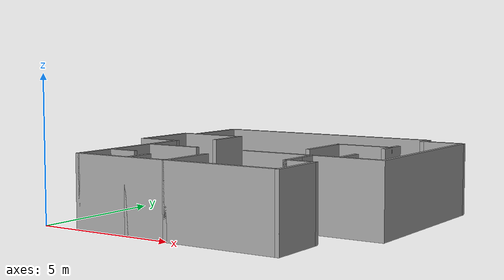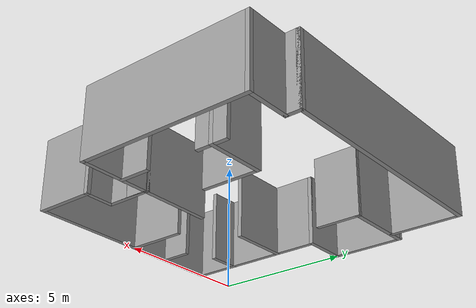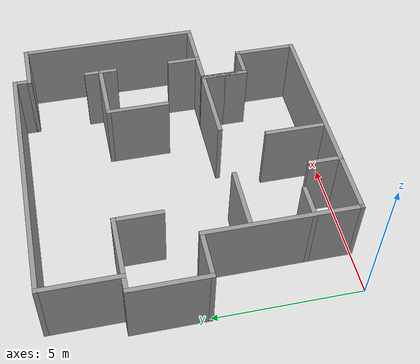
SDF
<?xml version='1.0'?>
<sdf version='1.7'>
  <model name='room1'>
    <pose>5.25 5 0 0 -0 0</pose>
    <link name='Wall_0'>
      <collision name='Wall_0_Collision'>
        <geometry>
          <box>
            <size>2.65 0.15 2.5</size>
          </box>
        </geometry>
        <pose>0 0 1.25 0 -0 0</pose>
      </collision>
      <visual name='Wall_0_Visual'>
        <pose>0 0 1.25 0 -0 0</pose>
        <geometry>
          <box>
            <size>2.65 0.15 2.5</size>
          </box>
        </geometry>
        <material>
          <script>
            <uri>file://media/materials/scripts/gazebo.material</uri>
            <name>Gazebo/Grey</name>
          </script>
          <ambient>1 1 1 1</ambient>
        </material>
        <meta>
          <layer>0</layer>
        </meta>
      </visual>
      <pose>-5.25 1.25 0 0 -0 1.5708</pose>
    </link>
    <link name='Wall_10'>
      <collision name='Wall_10_Collision'>
        <geometry>
          <box>
            <size>1.65 0.15 2.5</size>
          </box>
        </geometry>
        <pose>0 0 1.25 0 -0 0</pose>
      </collision>
      <visual name='Wall_10_Visual'>
        <pose>0 0 1.25 0 -0 0</pose>
        <geometry>
          <box>
            <size>1.65 0.15 2.5</size>
          </box>
        </geometry>
        <material>
          <script>
            <uri>file://media/materials/scripts/gazebo.material</uri>
            <name>Gazebo/Grey</name>
          </script>
          <ambient>1 1 1 1</ambient>
        </material>
        <meta>
          <layer>0</layer>
        </meta>
      </visual>
      <pose>2.75 -2.25 0 0 -0 1.5708</pose>
    </link>
    <link name='Wall_11'>
      <collision name='Wall_11_Collision'>
        <geometry>
          <box>
            <size>1.65 0.15 2.5</size>
          </box>
        </geometry>
        <pose>0 0 1.25 0 -0 0</pose>
      </collision>
      <visual name='Wall_11_Visual'>
        <pose>0 0 1.25 0 -0 0</pose>
        <geometry>
          <box>
            <size>1.65 0.15 2.5</size>
          </box>
        </geometry>
        <material>
          <script>
            <uri>file://media/materials/scripts/gazebo.material</uri>
            <name>Gazebo/Grey</name>
          </script>
          <ambient>1 1 1 1</ambient>
        </material>
        <meta>
          <layer>0</layer>
        </meta>
      </visual>
      <pose>2.75 -2.25 0 0 -0 -1.5708</pose>
    </link>
    <link name='Wall_13'>
      <collision name='Wall_13_Collision'>
        <geometry>
          <box>
            <size>1.15 0.15 2.5</size>
          </box>
        </geometry>
        <pose>0 0 1.25 0 -0 0</pose>
      </collision>
      <visual name='Wall_13_Visual'>
        <pose>0 0 1.25 0 -0 0</pose>
        <geometry>
          <box>
            <size>1.15 0.15 2.5</size>
          </box>
        </geometry>
        <material>
          <script>
            <uri>file://media/materials/scripts/gazebo.material</uri>
            <name>Gazebo/Grey</name>
          </script>
          <ambient>1 1 1 1</ambient>
        </material>
        <meta>
          <layer>0</layer>
        </meta>
      </visual>
      <pose>3.25 -3 0 0 -0 3.14159</pose>
    </link>
    <link name='Wall_15'>
      <collision name='Wall_15_Collision'>
        <geometry>
          <box>
            <size>5.15 0.15 2.5</size>
          </box>
        </geometry>
        <pose>0 0 1.25 0 -0 0</pose>
      </collision>
      <visual name='Wall_15_Visual'>
        <pose>0 0 1.25 0 -0 0</pose>
        <geometry>
          <box>
            <size>5.15 0.15 2.5</size>
          </box>
        </geometry>
        <material>
          <script>
            <uri>file://media/materials/scripts/gazebo.material</uri>
            <name>Gazebo/Grey</name>
          </script>
          <ambient>1 1 1 1</ambient>
        </material>
        <meta>
          <layer>0</layer>
        </meta>
      </visual>
      <pose>2.75 -1.5 0 0 -0 3.14159</pose>
    </link>
    <link name='Wall_17'>
      <collision name='Wall_17_Collision'>
        <geometry>
          <box>
            <size>6.15 0.15 2.5</size>
          </box>
        </geometry>
        <pose>0 0 1.25 0 -0 0</pose>
      </collision>
      <visual name='Wall_17_Visual'>
        <pose>0 0 1.25 0 -0 0</pose>
        <geometry>
          <box>
            <size>6.15 0.15 2.5</size>
          </box>
        </geometry>
        <material>
          <script>
            <uri>file://media/materials/scripts/gazebo.material</uri>
            <name>Gazebo/Grey</name>
          </script>
          <ambient>1 1 1 1</ambient>
        </material>
        <meta>
          <layer>0</layer>
        </meta>
      </visual>
      <pose>5.25 1.5 0 0 -0 1.5708</pose>
    </link>
    <link name='Wall_19'>
      <collision name='Wall_19_Collision'>
        <geometry>
          <box>
            <size>1.65 0.15 2.5</size>
          </box>
        </geometry>
        <pose>0 0 1.25 0 -0 0</pose>
      </collision>
      <visual name='Wall_19_Visual'>
        <pose>0 0 1.25 0 -0 0</pose>
        <geometry>
          <box>
            <size>1.65 0.15 2.5</size>
          </box>
        </geometry>
        <material>
          <script>
            <uri>file://media/materials/scripts/gazebo.material</uri>
            <name>Gazebo/Grey</name>
          </script>
          <ambient>1 1 1 1</ambient>
        </material>
        <meta>
          <layer>0</layer>
        </meta>
      </visual>
      <pose>4.5 4.5 0 0 -0 3.14159</pose>
    </link>
    <link name='Wall_2'>
      <collision name='Wall_2_Collision'>
        <geometry>
          <box>
            <size>1.65 0.15 2.5</size>
          </box>
        </geometry>
        <pose>0 0 1.25 0 -0 0</pose>
      </collision>
      <visual name='Wall_2_Visual'>
        <pose>0 0 1.25 0 -0 0</pose>
        <geometry>
          <box>
            <size>1.65 0.15 2.5</size>
          </box>
        </geometry>
        <material>
          <script>
            <uri>file://media/materials/scripts/gazebo.material</uri>
            <name>Gazebo/Grey</name>
          </script>
          <ambient>1 1 1 1</ambient>
        </material>
        <meta>
          <layer>0</layer>
        </meta>
      </visual>
      <pose>-4.5 0 0 0 -0 0</pose>
    </link>
    <link name='Wall_21'>
      <collision name='Wall_21_Collision'>
        <geometry>
          <box>
            <size>0.65 0.15 2.5</size>
          </box>
        </geometry>
        <pose>0 0 1.25 0 -0 0</pose>
      </collision>
      <visual name='Wall_21_Visual'>
        <pose>0 0 1.25 0 -0 0</pose>
        <geometry>
          <box>
            <size>0.65 0.15 2.5</size>
          </box>
        </geometry>
        <material>
          <script>
            <uri>file://media/materials/scripts/gazebo.material</uri>
            <name>Gazebo/Grey</name>
          </script>
          <ambient>1 1 1 1</ambient>
        </material>
        <meta>
          <layer>0</layer>
        </meta>
      </visual>
      <pose>3.75 4.75 0 0 -0 1.5708</pose>
    </link>
    <link name='Wall_23'>
      <collision name='Wall_23_Collision'>
        <geometry>
          <box>
            <size>8.65 0.15 2.5</size>
          </box>
        </geometry>
        <pose>0 0 1.25 0 -0 0</pose>
      </collision>
      <visual name='Wall_23_Visual'>
        <pose>0 0 1.25 0 -0 0</pose>
        <geometry>
          <box>
            <size>8.65 0.15 2.5</size>
          </box>
        </geometry>
        <material>
          <script>
            <uri>file://media/materials/scripts/gazebo.material</uri>
            <name>Gazebo/Grey</name>
          </script>
          <ambient>1 1 1 1</ambient>
        </material>
        <meta>
          <layer>0</layer>
        </meta>
      </visual>
      <pose>-0.5 5 0 0 -0 3.14159</pose>
    </link>
    <link name='Wall_25'>
      <collision name='Wall_25_Collision'>
        <geometry>
          <box>
            <size>2.65 0.15 2.5</size>
          </box>
        </geometry>
        <pose>0 0 1.25 0 -0 0</pose>
      </collision>
      <visual name='Wall_25_Visual'>
        <pose>0 0 1.25 0 -0 0</pose>
        <geometry>
          <box>
            <size>2.65 0.15 2.5</size>
          </box>
        </geometry>
        <material>
          <script>
            <uri>file://media/materials/scripts/gazebo.material</uri>
            <name>Gazebo/Grey</name>
          </script>
          <ambient>1 1 1 1</ambient>
        </material>
        <meta>
          <layer>0</layer>
        </meta>
      </visual>
      <pose>-4.75 3.75 0 0 -0 -1.5708</pose>
    </link>
    <link name='Wall_27'>
      <collision name='Wall_27_Collision'>
        <geometry>
          <box>
            <size>2.65 0.15 2.5</size>
          </box>
        </geometry>
        <pose>0 0 1.25 0 -0 0</pose>
      </collision>
      <visual name='Wall_27_Visual'>
        <pose>0 0 1.25 0 -0 0</pose>
        <geometry>
          <box>
            <size>2.65 0.15 2.5</size>
          </box>
        </geometry>
        <material>
          <script>
            <uri>file://media/materials/scripts/gazebo.material</uri>
            <name>Gazebo/Grey</name>
          </script>
          <ambient>1 1 1 1</ambient>
        </material>
        <meta>
          <layer>0</layer>
        </meta>
      </visual>
      <pose>-4 2.5 0 0 -0 0</pose>
    </link>
    <link name='Wall_29'>
      <collision name='Wall_29_Collision'>
        <geometry>
          <box>
            <size>1.65 0.15 2.5</size>
          </box>
        </geometry>
        <pose>0 0 1.25 0 -0 0</pose>
      </collision>
      <visual name='Wall_29_Visual'>
        <pose>0 0 1.25 0 -0 0</pose>
        <geometry>
          <box>
            <size>1.65 0.15 2.5</size>
          </box>
        </geometry>
        <material>
          <script>
            <uri>file://media/materials/scripts/gazebo.material</uri>
            <name>Gazebo/Grey</name>
          </script>
          <ambient>1 1 1 1</ambient>
        </material>
        <meta>
          <layer>0</layer>
        </meta>
      </visual>
      <pose>-2.75 1.75 0 0 -0 -1.5708</pose>
    </link>
    <link name='Wall_31'>
      <collision name='Wall_31_Collision'>
        <geometry>
          <box>
            <size>2.15 0.15 2.5</size>
          </box>
        </geometry>
        <pose>0 0 1.25 0 -0 0</pose>
      </collision>
      <visual name='Wall_31_Visual'>
        <pose>0 0 1.25 0 -0 0</pose>
        <geometry>
          <box>
            <size>2.15 0.15 2.5</size>
          </box>
        </geometry>
        <material>
          <script>
            <uri>file://media/materials/scripts/gazebo.material</uri>
            <name>Gazebo/Grey</name>
          </script>
          <ambient>1 1 1 1</ambient>
        </material>
        <meta>
          <layer>0</layer>
        </meta>
      </visual>
      <pose>-2.75 -1.5 0 0 -0 0</pose>
    </link>
    <link name='Wall_33'>
      <collision name='Wall_33_Collision'>
        <geometry>
          <box>
            <size>1.15 0.15 2.5</size>
          </box>
        </geometry>
        <pose>0 0 1.25 0 -0 0</pose>
      </collision>
      <visual name='Wall_33_Visual'>
        <pose>0 0 1.25 0 -0 0</pose>
        <geometry>
          <box>
            <size>1.15 0.15 2.5</size>
          </box>
        </geometry>
        <material>
          <script>
            <uri>file://media/materials/scripts/gazebo.material</uri>
            <name>Gazebo/Grey</name>
          </script>
          <ambient>1 1 1 1</ambient>
        </material>
        <meta>
          <layer>0</layer>
        </meta>
      </visual>
      <pose>-3.25 -3.5 0 0 -0 0</pose>
    </link>
    <link name='Wall_35'>
      <collision name='Wall_35_Collision'>
        <geometry>
          <box>
            <size>1.15 0.15 2.5</size>
          </box>
        </geometry>
        <pose>0 0 1.25 0 -0 0</pose>
      </collision>
      <visual name='Wall_35_Visual'>
        <pose>0 0 1.25 0 -0 0</pose>
        <geometry>
          <box>
            <size>1.15 0.15 2.5</size>
          </box>
        </geometry>
        <material>
          <script>
            <uri>file://media/materials/scripts/gazebo.material</uri>
            <name>Gazebo/Grey</name>
          </script>
          <ambient>1 1 1 1</ambient>
        </material>
        <meta>
          <layer>0</layer>
        </meta>
      </visual>
      <pose>-1.75 -4.5 0 0 -0 1.5708</pose>
    </link>
    <link name='Wall_37'>
      <collision name='Wall_37_Collision'>
        <geometry>
          <box>
            <size>2.15 0.15 2.5</size>
          </box>
        </geometry>
        <pose>0 0 1.25 0 -0 0</pose>
      </collision>
      <visual name='Wall_37_Visual'>
        <pose>0 0 1.25 0 -0 0</pose>
        <geometry>
          <box>
            <size>2.15 0.15 2.5</size>
          </box>
        </geometry>
        <material>
          <script>
            <uri>file://media/materials/scripts/gazebo.material</uri>
            <name>Gazebo/Grey</name>
          </script>
          <ambient>1 1 1 1</ambient>
        </material>
        <meta>
          <layer>0</layer>
        </meta>
      </visual>
      <pose>-0.25 -4 0 0 -0 1.5708</pose>
    </link>
    <link name='Wall_39'>
      <collision name='Wall_39_Collision'>
        <geometry>
          <box>
            <size>1.15 0.15 2.5</size>
          </box>
        </geometry>
        <pose>0 0 1.25 0 -0 0</pose>
      </collision>
      <visual name='Wall_39_Visual'>
        <pose>0 0 1.25 0 -0 0</pose>
        <geometry>
          <box>
            <size>1.15 0.15 2.5</size>
          </box>
        </geometry>
        <material>
          <script>
            <uri>file://media/materials/scripts/gazebo.material</uri>
            <name>Gazebo/Grey</name>
          </script>
          <ambient>1 1 1 1</ambient>
        </material>
        <meta>
          <layer>0</layer>
        </meta>
      </visual>
      <pose>3.75 -1 0 0 -0 1.5708</pose>
    </link>
    <link name='Wall_4'>
      <collision name='Wall_4_Collision'>
        <geometry>
          <box>
            <size>5.15 0.15 2.5</size>
          </box>
        </geometry>
        <pose>0 0 1.25 0 -0 0</pose>
      </collision>
      <visual name='Wall_4_Visual'>
        <pose>0 0 1.25 0 -0 0</pose>
        <geometry>
          <box>
            <size>5.15 0.15 2.5</size>
          </box>
        </geometry>
        <material>
          <script>
            <uri>file://media/materials/scripts/gazebo.material</uri>
            <name>Gazebo/Grey</name>
          </script>
          <ambient>1 1 1 1</ambient>
        </material>
        <meta>
          <layer>0</layer>
        </meta>
      </visual>
      <pose>-3.75 -2.5 0 0 -0 1.5708</pose>
    </link>
    <link name='Wall_41'>
      <collision name='Wall_41_Collision'>
        <geometry>
          <box>
            <size>1.15 0.15 2.5</size>
          </box>
        </geometry>
        <pose>0 0 1.25 0 -0 0</pose>
      </collision>
      <visual name='Wall_41_Visual'>
        <pose>0 0 1.25 0 -0 0</pose>
        <geometry>
          <box>
            <size>1.15 0.15 2.5</size>
          </box>
        </geometry>
        <material>
          <script>
            <uri>file://media/materials/scripts/gazebo.material</uri>
            <name>Gazebo/Grey</name>
          </script>
          <ambient>1 1 1 1</ambient>
        </material>
        <meta>
          <layer>0</layer>
        </meta>
      </visual>
      <pose>3.75 2 0 0 -0 1.5708</pose>
    </link>
    <link name='Wall_43'>
      <collision name='Wall_43_Collision'>
        <geometry>
          <box>
            <size>2.15 0.15 2.5</size>
          </box>
        </geometry>
        <pose>0 0 1.25 0 -0 0</pose>
      </collision>
      <visual name='Wall_43_Visual'>
        <pose>0 0 1.25 0 -0 0</pose>
        <geometry>
          <box>
            <size>2.15 0.15 2.5</size>
          </box>
        </geometry>
        <material>
          <script>
            <uri>file://media/materials/scripts/gazebo.material</uri>
            <name>Gazebo/Grey</name>
          </script>
          <ambient>1 1 1 1</ambient>
        </material>
        <meta>
          <layer>0</layer>
        </meta>
      </visual>
      <pose>2.75 2 0 0 -0 3.14159</pose>
    </link>
    <link name='Wall_45'>
      <collision name='Wall_45_Collision'>
        <geometry>
          <box>
            <size>2.15 0.15 2.5</size>
          </box>
        </geometry>
        <pose>0 0 1.25 0 -0 0</pose>
      </collision>
      <visual name='Wall_45_Visual'>
        <pose>0 0 1.25 0 -0 0</pose>
        <geometry>
          <box>
            <size>2.15 0.15 2.5</size>
          </box>
        </geometry>
        <material>
          <script>
            <uri>file://media/materials/scripts/gazebo.material</uri>
            <name>Gazebo/Grey</name>
          </script>
          <ambient>1 1 1 1</ambient>
        </material>
        <meta>
          <layer>0</layer>
        </meta>
      </visual>
      <pose>1.75 1 0 0 -0 -1.5708</pose>
    </link>
    <link name='Wall_6'>
      <collision name='Wall_6_Collision'>
        <geometry>
          <box>
            <size>7.65 0.15 2.5</size>
          </box>
        </geometry>
        <pose>0 0 1.25 0 -0 0</pose>
      </collision>
      <visual name='Wall_6_Visual'>
        <pose>0 0 1.25 0 -0 0</pose>
        <geometry>
          <box>
            <size>7.65 0.15 2.5</size>
          </box>
        </geometry>
        <material>
          <script>
            <uri>file://media/materials/scripts/gazebo.material</uri>
            <name>Gazebo/Grey</name>
          </script>
          <ambient>1 1 1 1</ambient>
        </material>
        <meta>
          <layer>0</layer>
        </meta>
      </visual>
      <pose>-0 -5 0 0 -0 0</pose>
    </link>
    <link name='Wall_8'>
      <collision name='Wall_8_Collision'>
        <geometry>
          <box>
            <size>2.15 0.15 2.5</size>
          </box>
        </geometry>
        <pose>0 0 1.25 0 -0 0</pose>
      </collision>
      <visual name='Wall_8_Visual'>
        <pose>0 0 1.25 0 -0 0</pose>
        <geometry>
          <box>
            <size>2.15 0.15 2.5</size>
          </box>
        </geometry>
        <material>
          <script>
            <uri>file://media/materials/scripts/gazebo.material</uri>
            <name>Gazebo/Grey</name>
          </script>
          <ambient>1 1 1 1</ambient>
        </material>
        <meta>
          <layer>0</layer>
        </meta>
      </visual>
      <pose>3.75 -4 0 0 -0 1.5708</pose>
    </link>
    <static>1</static>
  </model>
</sdf>
